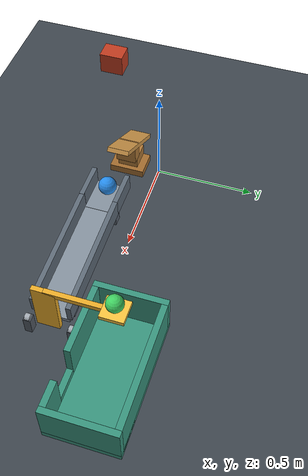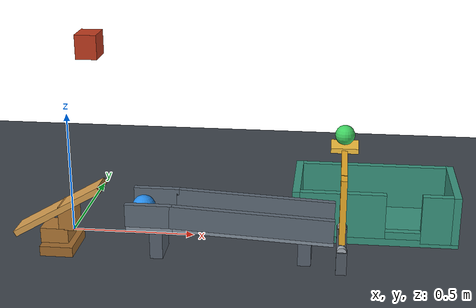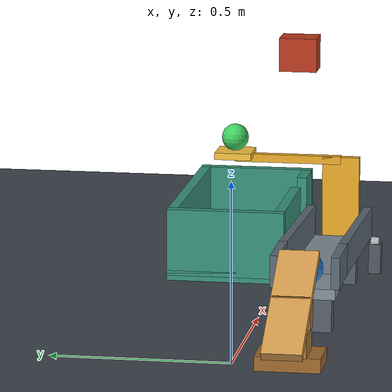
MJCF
<mujoco model="falling_block_wedge_ball_flap_cup">
  <compiler angle="degree" inertiafromgeom="true"/>
  <option timestep="0.002" gravity="0 0 -9.81" integrator="implicitfast" iterations="100" cone="elliptic"/>
  <size njmax="2000" nconmax="400"/>

  <visual>
    <global azimuth="135" elevation="-25"/>
    <headlight ambient="0.35 0.35 0.35" diffuse="0.65 0.65 0.65" specular="0.15 0.15 0.15"/>
  </visual>

  <worldbody>
    <light name="overhead_light" pos="0.7 -0.5 3" dir="0 0 -1" directional="true"/>
    <geom name="floor" type="plane" pos="0 0 0" size="3 2 0.1" rgba="0.24 0.27 0.30 1" condim="6" friction="0.9 0.01 0.002" solref="0.008 1" solimp="0.95 0.99 0.001"/>

    <!-- The block's underside starts 0.500 m above the wedge's highest corner. -->
    <body name="block" pos="0.155 -0.16 0.8253923">
      <freejoint name="block_free"/>
      <geom name="block_weight" type="box" size="0.04 0.05 0.045" mass="0.9" rgba="0.75 0.23 0.12 1" friction="0.45 0.003 0.0003" solref="0.006 1" solimp="0.95 0.99 0.001"/>
    </body>

    <!-- A loose compound wedge with a narrow foot and an overhanging high side. -->
    <body name="wedge" pos="0 -0.16 0">
      <freejoint name="wedge_free"/>
      <geom name="wedge_foot" type="box" pos="0 0 0.02" size="0.065 0.09 0.02" mass="0.32" rgba="0.63 0.42 0.18 1" friction="1.2 0.01 0.001" solref="0.006 1" solimp="0.95 0.99 0.001"/>
      <geom name="wedge_lower_step" type="box" pos="-0.015 0 0.07" size="0.055 0.052 0.03" mass="0.08" rgba="0.69 0.47 0.21 1" friction="0.6 0.003 0.0003" solref="0.006 1" solimp="0.95 0.99 0.001"/>
      <geom name="wedge_upper_step" type="box" pos="0.035 0 0.143" size="0.03 0.052 0.047" mass="0.05" rgba="0.69 0.47 0.21 1" friction="0.6 0.003 0.0003" solref="0.006 1" solimp="0.95 0.99 0.001"/>
      <geom name="wedge_sloping_face" type="box" pos="0 0 0.17" quat="0.965925826 0 -0.258819045 0" size="0.20 0.055 0.012" mass="0.15" rgba="0.83 0.61 0.30 1" friction="0.45 0.003 0.0003" solref="0.006 1" solimp="0.95 0.99 0.001"/>
    </body>

    <!-- Ball1 starts on the level landing, rather than rolling before the impact. -->
    <body name="ball1" pos="0.335 -0.16 0.19">
      <freejoint name="ball1_free"/>
      <geom name="ball1_sphere" type="sphere" size="0.045" mass="0.11" rgba="0.15 0.55 0.92 1" condim="6" friction="0.7 0.003 0.0003" solref="0.008 1" solimp="0.95 0.99 0.001"/>
    </body>

    <body name="ramp" pos="0 0 0">
      <geom name="ramp_start_deck" type="box" pos="0.37 -0.16 0.13" size="0.09 0.085 0.015" rgba="0.52 0.57 0.62 1" condim="6" friction="0.7 0.003 0.0003" solref="0.008 1" solimp="0.95 0.99 0.001"/>
      <geom name="ramp_start_rail_left" type="box" pos="0.37 -0.245 0.19" size="0.09 0.012 0.045" rgba="0.37 0.42 0.47 1" friction="0.35 0.002 0.0002" solref="0.008 1"/>
      <geom name="ramp_start_rail_right" type="box" pos="0.37 -0.075 0.19" size="0.09 0.012 0.045" rgba="0.37 0.42 0.47 1" friction="0.35 0.002 0.0002" solref="0.008 1"/>
      <geom name="ramp_downhill_deck" type="box" pos="0.76 -0.16 0.1200117" quat="0.9997078 0 0.0241723 0" size="0.3103627 0.085 0.01" rgba="0.52 0.57 0.62 1" condim="6" friction="0.7 0.003 0.0003" solref="0.008 1" solimp="0.95 0.99 0.001"/>
      <geom name="ramp_downhill_rail_left" type="box" pos="0.76 -0.245 0.175" quat="0.9997078 0 0.0241723 0" size="0.3103627 0.012 0.045" rgba="0.37 0.42 0.47 1" friction="0.35 0.002 0.0002" solref="0.008 1"/>
      <geom name="ramp_downhill_rail_right" type="box" pos="0.76 -0.075 0.175" quat="0.9997078 0 0.0241723 0" size="0.3103627 0.012 0.045" rgba="0.37 0.42 0.47 1" friction="0.35 0.002 0.0002" solref="0.008 1"/>
      <geom name="ramp_support_front" type="box" pos="0.39 -0.16 0.06" size="0.025 0.065 0.06" rgba="0.34 0.38 0.43 1"/>
      <geom name="ramp_support_rear" type="box" pos="0.96 -0.16 0.047" size="0.025 0.065 0.047" rgba="0.34 0.38 0.43 1"/>
    </body>

    <body name="flap_support" pos="1.1 -0.16 0">
      <geom name="flap_support_left" type="box" pos="0 -0.105 0.045" size="0.02 0.018 0.045" rgba="0.32 0.35 0.39 1"/>
      <geom name="flap_support_right" type="box" pos="0 0.105 0.045" size="0.02 0.018 0.045" rgba="0.32 0.35 0.39 1"/>
      <geom name="flap_support_left_bearing" type="cylinder" pos="0 -0.105 0.09" quat="0.707106781 0.707106781 0 0" size="0.018 0.012" rgba="0.65 0.68 0.71 1"/>
      <geom name="flap_support_right_bearing" type="cylinder" pos="0 0.105 0.09" quat="0.707106781 0.707106781 0 0" size="0.018 0.012" rgba="0.65 0.68 0.71 1"/>
    </body>

    <!-- The weak closing preload holds the upright flap until ball1 strikes it. -->
    <body name="flap" pos="1.1 -0.16 0.09">
      <joint name="flap_hinge" type="hinge" axis="0 -1 0" limited="true" range="-90 0" stiffness="0.025" springref="15" damping="0.007" armature="0.0001" solreflimit="0.004 1" solimplimit="0.99 0.999 0.001"/>
      <geom name="flap_striker_panel" type="box" pos="0 0 0.13" size="0.012 0.055 0.13" mass="0.10" rgba="0.93 0.68 0.16 1" friction="0.6 0.002 0.0002" solref="0.008 1" solimp="0.95 0.99 0.001"/>
      <geom name="flap_crossbar" type="box" pos="0 0.16 0.25" size="0.012 0.16 0.012" mass="0.045" rgba="0.93 0.68 0.16 1" friction="0.6 0.002 0.0002" solref="0.008 1"/>
      <geom name="flap_ball2_shelf" type="box" pos="0 0.32 0.26" size="0.055 0.055 0.01" mass="0.025" rgba="0.98 0.77 0.25 1" condim="6" friction="0.5 0.003 0.0003" solref="0.008 1" solimp="0.95 0.99 0.001"/>
    </body>

    <body name="ball2" pos="1.1 0.16 0.4">
      <freejoint name="ball2_free"/>
      <geom name="ball2_sphere" type="sphere" size="0.04" mass="0.05" rgba="0.25 0.82 0.38 1" condim="6" friction="0.9 0.02 0.008" solref="0.008 1" solimp="0.95 0.99 0.001"/>
    </body>

    <!-- The front wall has a clearance slot for the flap crossbar's swept volume. -->
    <body name="cup" pos="1.23 0.16 0">
      <geom name="cup_bottom" type="box" pos="0 0 0.015" size="0.33 0.175 0.015" rgba="0.22 0.58 0.49 1" condim="6" friction="1.0 0.03 0.01" solref="0.008 1" solimp="0.95 0.99 0.001"/>
      <geom name="cup_left_wall" type="box" pos="-0.315 0 0.115" size="0.015 0.175 0.10" rgba="0.22 0.58 0.49 1" condim="6" friction="1.0 0.03 0.01" solref="0.008 1" solimp="0.95 0.99 0.001"/>
      <geom name="cup_right_wall" type="box" pos="0.315 0 0.115" size="0.015 0.175 0.10" rgba="0.22 0.58 0.49 1" condim="6" friction="1.0 0.03 0.01" solref="0.008 1" solimp="0.95 0.99 0.001"/>
      <geom name="cup_front_wall_left" type="box" pos="-0.13 -0.16 0.115" size="0.17 0.015 0.10" rgba="0.22 0.58 0.49 1" condim="6" friction="1.0 0.03 0.01" solref="0.008 1" solimp="0.95 0.99 0.001"/>
      <geom name="cup_front_wall_right" type="box" pos="0.24 -0.16 0.115" size="0.06 0.015 0.10" rgba="0.22 0.58 0.49 1" condim="6" friction="1.0 0.03 0.01" solref="0.008 1" solimp="0.95 0.99 0.001"/>
      <geom name="cup_front_slot_lip" type="box" pos="0.11 -0.16 0.045" size="0.07 0.015 0.015" rgba="0.22 0.58 0.49 1" condim="6" friction="1.0 0.03 0.01" solref="0.008 1" solimp="0.95 0.99 0.001"/>
      <geom name="cup_back_wall" type="box" pos="0 0.16 0.115" size="0.30 0.015 0.10" rgba="0.22 0.58 0.49 1" condim="6" friction="1.0 0.03 0.01" solref="0.008 1" solimp="0.95 0.99 0.001"/>
    </body>
  </worldbody>

  <keyframe>
    <key name="start"/>
  </keyframe>
</mujoco>
